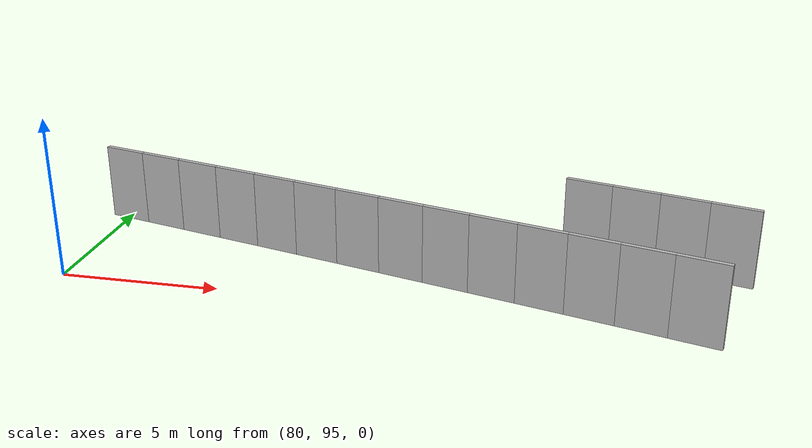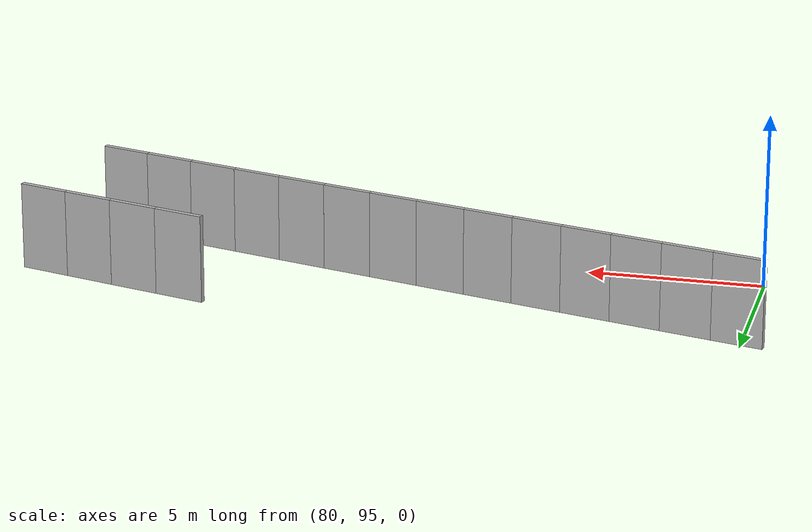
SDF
<?xml version="1.0" ?>
<sdf version="1.6">
  <model name="sps_1522">
    <pose frame="">0 0 0 0 -0 0</pose>
    <static>1</static>
    <self_collide>0</self_collide>
    <allow_auto_disable>0</allow_auto_disable>
    <link name="Wall10778">
      <kinematic>0</kinematic>
      <gravity>1</gravity>
      <self_collide>0</self_collide>
      <collision name="collision">
        <geometry>
          <box>
            <size>1.49658 0.15 2.5</size>
          </box>
        </geometry>
        <pose frame="">0 0 0 0 -0 0</pose>
      </collision>
      <visual name="visual">
        <geometry>
          <box>
            <size>1.49658 0.15 2.5</size>
          </box>
        </geometry>
        <pose frame="">0 0 0 0 -0 0</pose>
        <cast_shadows>1</cast_shadows>
        <transparency>0.0</transparency>
      </visual>
      <pose frame="">98.8596 94.5353 1.25 0 -0 2.86381</pose>
    </link>
    <link name="Wall10779">
      <kinematic>0</kinematic>
      <gravity>1</gravity>
      <self_collide>0</self_collide>
      <collision name="collision">
        <geometry>
          <box>
            <size>1.49656 0.15 2.5</size>
          </box>
        </geometry>
        <pose frame="">0 0 0 0 -0 0</pose>
      </collision>
      <visual name="visual">
        <geometry>
          <box>
            <size>1.49656 0.15 2.5</size>
          </box>
        </geometry>
        <pose frame="">0 0 0 0 -0 0</pose>
        <cast_shadows>1</cast_shadows>
        <transparency>0.0</transparency>
      </visual>
      <pose frame="">97.4202 94.9447 1.25 0 -0 2.8652</pose>
    </link>
    <link name="Wall10780">
      <kinematic>0</kinematic>
      <gravity>1</gravity>
      <self_collide>0</self_collide>
      <collision name="collision">
        <geometry>
          <box>
            <size>1.49651 0.15 2.5</size>
          </box>
        </geometry>
        <pose frame="">0 0 0 0 -0 0</pose>
      </collision>
      <visual name="visual">
        <geometry>
          <box>
            <size>1.49651 0.15 2.5</size>
          </box>
        </geometry>
        <pose frame="">0 0 0 0 -0 0</pose>
        <cast_shadows>1</cast_shadows>
        <transparency>0.0</transparency>
      </visual>
      <pose frame="">95.9801 95.3518 1.25 0 -0 2.86697</pose>
    </link>
    <link name="Wall10781">
      <kinematic>0</kinematic>
      <gravity>1</gravity>
      <self_collide>0</self_collide>
      <collision name="collision">
        <geometry>
          <box>
            <size>1.49642 0.15 2.5</size>
          </box>
        </geometry>
        <pose frame="">0 0 0 0 -0 0</pose>
      </collision>
      <visual name="visual">
        <geometry>
          <box>
            <size>1.49642 0.15 2.5</size>
          </box>
        </geometry>
        <pose frame="">0 0 0 0 -0 0</pose>
        <cast_shadows>1</cast_shadows>
        <transparency>0.0</transparency>
      </visual>
      <pose frame="">94.5394 95.7565 1.25 0 -0 2.86853</pose>
    </link>
    <link name="Wall10782">
      <kinematic>0</kinematic>
      <gravity>1</gravity>
      <self_collide>0</self_collide>
      <collision name="collision">
        <geometry>
          <box>
            <size>1.49667 0.15 2.5</size>
          </box>
        </geometry>
        <pose frame="">0 0 0 0 -0 0</pose>
      </collision>
      <visual name="visual">
        <geometry>
          <box>
            <size>1.49667 0.15 2.5</size>
          </box>
        </geometry>
        <pose frame="">0 0 0 0 -0 0</pose>
        <cast_shadows>1</cast_shadows>
        <transparency>0.0</transparency>
      </visual>
      <pose frame="">93.098 96.159 1.25 0 -0 2.87005</pose>
    </link>
    <link name="Wall10783">
      <kinematic>0</kinematic>
      <gravity>1</gravity>
      <self_collide>0</self_collide>
      <collision name="collision">
        <geometry>
          <box>
            <size>1.49637 0.15 2.5</size>
          </box>
        </geometry>
        <pose frame="">0 0 0 0 -0 0</pose>
      </collision>
      <visual name="visual">
        <geometry>
          <box>
            <size>1.49637 0.15 2.5</size>
          </box>
        </geometry>
        <pose frame="">0 0 0 0 -0 0</pose>
        <cast_shadows>1</cast_shadows>
        <transparency>0.0</transparency>
      </visual>
      <pose frame="">91.6559 96.5592 1.25 0 -0 2.87169</pose>
    </link>
    <link name="Wall10784">
      <kinematic>0</kinematic>
      <gravity>1</gravity>
      <self_collide>0</self_collide>
      <collision name="collision">
        <geometry>
          <box>
            <size>1.49655 0.15 2.5</size>
          </box>
        </geometry>
        <pose frame="">0 0 0 0 -0 0</pose>
      </collision>
      <visual name="visual">
        <geometry>
          <box>
            <size>1.49655 0.15 2.5</size>
          </box>
        </geometry>
        <pose frame="">0 0 0 0 -0 0</pose>
        <cast_shadows>1</cast_shadows>
        <transparency>0.0</transparency>
      </visual>
      <pose frame="">90.2133 96.9571 1.25 0 -0 2.87325</pose>
    </link>
    <link name="Wall10785">
      <kinematic>0</kinematic>
      <gravity>1</gravity>
      <self_collide>0</self_collide>
      <collision name="collision">
        <geometry>
          <box>
            <size>1.49656 0.15 2.5</size>
          </box>
        </geometry>
        <pose frame="">0 0 0 0 -0 0</pose>
      </collision>
      <visual name="visual">
        <geometry>
          <box>
            <size>1.49656 0.15 2.5</size>
          </box>
        </geometry>
        <pose frame="">0 0 0 0 -0 0</pose>
        <cast_shadows>1</cast_shadows>
        <transparency>0.0</transparency>
      </visual>
      <pose frame="">88.77 97.3528 1.25 0 -0 2.87477</pose>
    </link>
    <link name="Wall10786">
      <kinematic>0</kinematic>
      <gravity>1</gravity>
      <self_collide>0</self_collide>
      <collision name="collision">
        <geometry>
          <box>
            <size>1.49652 0.15 2.5</size>
          </box>
        </geometry>
        <pose frame="">0 0 0 0 -0 0</pose>
      </collision>
      <visual name="visual">
        <geometry>
          <box>
            <size>1.49652 0.15 2.5</size>
          </box>
        </geometry>
        <pose frame="">0 0 0 0 -0 0</pose>
        <cast_shadows>1</cast_shadows>
        <transparency>0.0</transparency>
      </visual>
      <pose frame="">87.3261 97.7462 1.25 0 -0 2.87641</pose>
    </link>
    <link name="Wall10787">
      <kinematic>0</kinematic>
      <gravity>1</gravity>
      <self_collide>0</self_collide>
      <collision name="collision">
        <geometry>
          <box>
            <size>1.49643 0.15 2.5</size>
          </box>
        </geometry>
        <pose frame="">0 0 0 0 -0 0</pose>
      </collision>
      <visual name="visual">
        <geometry>
          <box>
            <size>1.49643 0.15 2.5</size>
          </box>
        </geometry>
        <pose frame="">0 0 0 0 -0 0</pose>
        <cast_shadows>1</cast_shadows>
        <transparency>0.0</transparency>
      </visual>
      <pose frame="">85.8816 98.1372 1.25 0 -0 2.87805</pose>
    </link>
    <link name="Wall10788">
      <kinematic>0</kinematic>
      <gravity>1</gravity>
      <self_collide>0</self_collide>
      <collision name="collision">
        <geometry>
          <box>
            <size>1.49649 0.15 2.5</size>
          </box>
        </geometry>
        <pose frame="">0 0 0 0 -0 0</pose>
      </collision>
      <visual name="visual">
        <geometry>
          <box>
            <size>1.49649 0.15 2.5</size>
          </box>
        </geometry>
        <pose frame="">0 0 0 0 -0 0</pose>
        <cast_shadows>1</cast_shadows>
        <transparency>0.0</transparency>
      </visual>
      <pose frame="">84.4365 98.5259 1.25 0 -0 2.87962</pose>
    </link>
    <link name="Wall10789">
      <kinematic>0</kinematic>
      <gravity>1</gravity>
      <self_collide>0</self_collide>
      <collision name="collision">
        <geometry>
          <box>
            <size>1.49647 0.15 2.5</size>
          </box>
        </geometry>
        <pose frame="">0 0 0 0 -0 0</pose>
      </collision>
      <visual name="visual">
        <geometry>
          <box>
            <size>1.49647 0.15 2.5</size>
          </box>
        </geometry>
        <pose frame="">0 0 0 0 -0 0</pose>
        <cast_shadows>1</cast_shadows>
        <transparency>0.0</transparency>
      </visual>
      <pose frame="">82.9908 98.9124 1.25 0 -0 2.88109</pose>
    </link>
    <link name="Wall10790">
      <kinematic>0</kinematic>
      <gravity>1</gravity>
      <self_collide>0</self_collide>
      <collision name="collision">
        <geometry>
          <box>
            <size>1.49661 0.15 2.5</size>
          </box>
        </geometry>
        <pose frame="">0 0 0 0 -0 0</pose>
      </collision>
      <visual name="visual">
        <geometry>
          <box>
            <size>1.49661 0.15 2.5</size>
          </box>
        </geometry>
        <pose frame="">0 0 0 0 -0 0</pose>
        <cast_shadows>1</cast_shadows>
        <transparency>0.0</transparency>
      </visual>
      <pose frame="">81.5445 99.2966 1.25 0 -0 2.88281</pose>
    </link>
    <link name="Wall10791">
      <kinematic>0</kinematic>
      <gravity>1</gravity>
      <self_collide>0</self_collide>
      <collision name="collision">
        <geometry>
          <box>
            <size>1.49647 0.15 2.5</size>
          </box>
        </geometry>
        <pose frame="">0 0 0 0 -0 0</pose>
      </collision>
      <visual name="visual">
        <geometry>
          <box>
            <size>1.49647 0.15 2.5</size>
          </box>
        </geometry>
        <pose frame="">0 0 0 0 -0 0</pose>
        <cast_shadows>1</cast_shadows>
        <transparency>0.0</transparency>
      </visual>
      <pose frame="">80.0975 99.6785 1.25 0 -0 2.8843</pose>
    </link>
    <link name="Wall11375">
      <kinematic>0</kinematic>
      <gravity>1</gravity>
      <self_collide>0</self_collide>
      <collision name="collision">
        <geometry>
          <box>
            <size>1.50305 0.15 2.5</size>
          </box>
        </geometry>
        <pose frame="">0 0 0 0 -0 0</pose>
      </collision>
      <visual name="visual">
        <geometry>
          <box>
            <size>1.50305 0.15 2.5</size>
          </box>
        </geometry>
        <pose frame="">0 0 0 0 -0 0</pose>
        <cast_shadows>1</cast_shadows>
        <transparency>0.0</transparency>
      </visual>
      <pose frame="">99.995 98.5166 1.25 0 -0 2.86381</pose>
    </link>
    <link name="Wall11376">
      <kinematic>0</kinematic>
      <gravity>1</gravity>
      <self_collide>0</self_collide>
      <collision name="collision">
        <geometry>
          <box>
            <size>1.50322 0.15 2.5</size>
          </box>
        </geometry>
        <pose frame="">0 0 0 0 -0 0</pose>
      </collision>
      <visual name="visual">
        <geometry>
          <box>
            <size>1.50322 0.15 2.5</size>
          </box>
        </geometry>
        <pose frame="">0 0 0 0 -0 0</pose>
        <cast_shadows>1</cast_shadows>
        <transparency>0.0</transparency>
      </visual>
      <pose frame="">98.5492 98.9278 1.25 0 -0 2.86519</pose>
    </link>
    <link name="Wall11377">
      <kinematic>0</kinematic>
      <gravity>1</gravity>
      <self_collide>0</self_collide>
      <collision name="collision">
        <geometry>
          <box>
            <size>1.50292 0.15 2.5</size>
          </box>
        </geometry>
        <pose frame="">0 0 0 0 -0 0</pose>
      </collision>
      <visual name="visual">
        <geometry>
          <box>
            <size>1.50292 0.15 2.5</size>
          </box>
        </geometry>
        <pose frame="">0 0 0 0 -0 0</pose>
        <cast_shadows>1</cast_shadows>
        <transparency>0.0</transparency>
      </visual>
      <pose frame="">97.1028 99.3367 1.25 0 -0 2.86695</pose>
    </link>
    <link name="Wall11378">
      <kinematic>0</kinematic>
      <gravity>1</gravity>
      <self_collide>0</self_collide>
      <collision name="collision">
        <geometry>
          <box>
            <size>1.50315 0.15 2.5</size>
          </box>
        </geometry>
        <pose frame="">0 0 0 0 -0 0</pose>
      </collision>
      <visual name="visual">
        <geometry>
          <box>
            <size>1.50315 0.15 2.5</size>
          </box>
        </geometry>
        <pose frame="">0 0 0 0 -0 0</pose>
        <cast_shadows>1</cast_shadows>
        <transparency>0.0</transparency>
      </visual>
      <pose frame="">95.6558 99.7432 1.25 0 -0 2.86851</pose>
    </link>
  </model>
</sdf>
